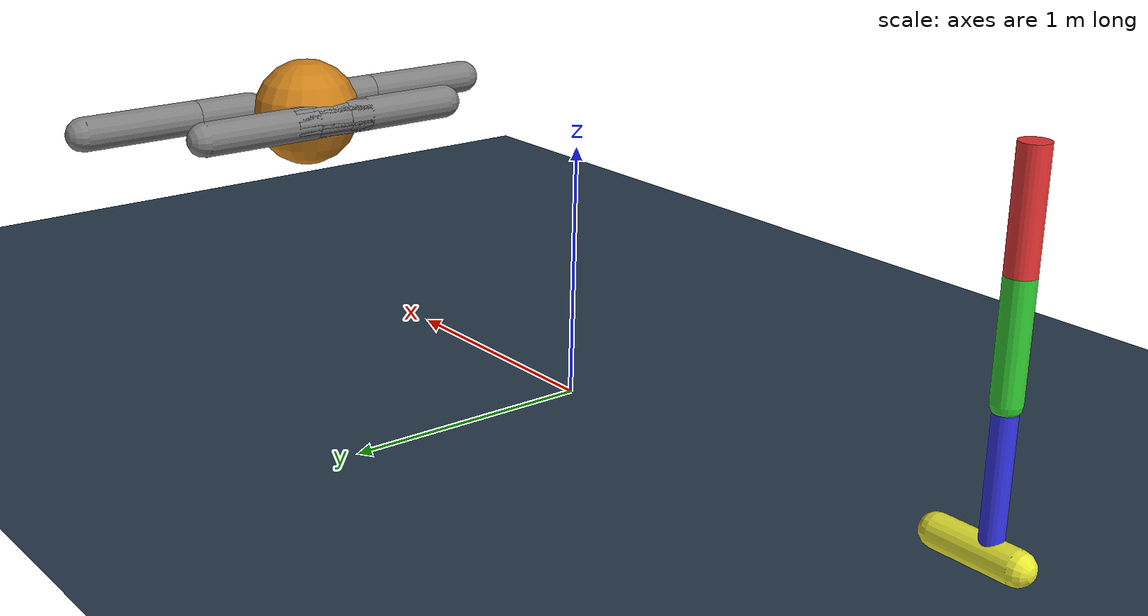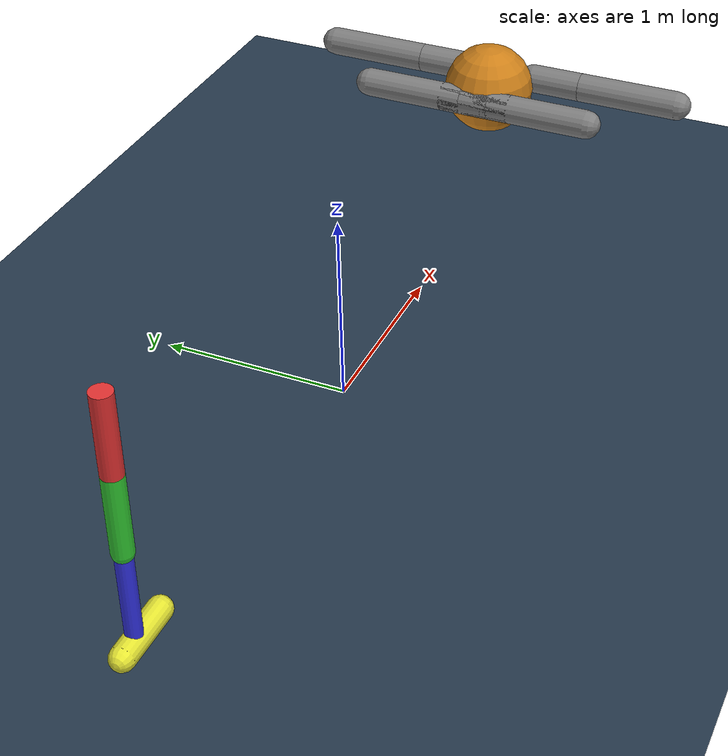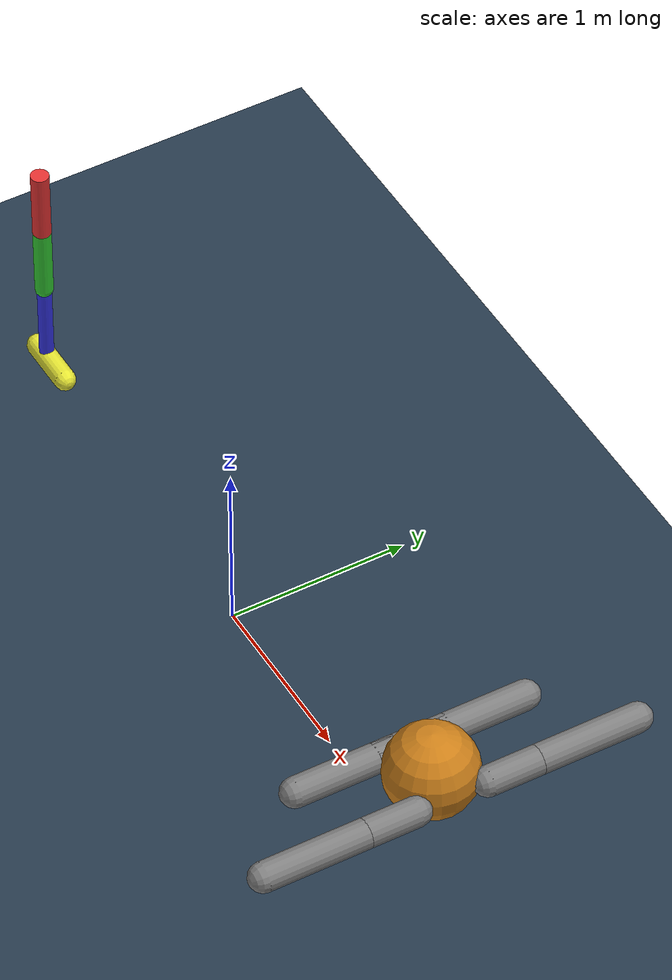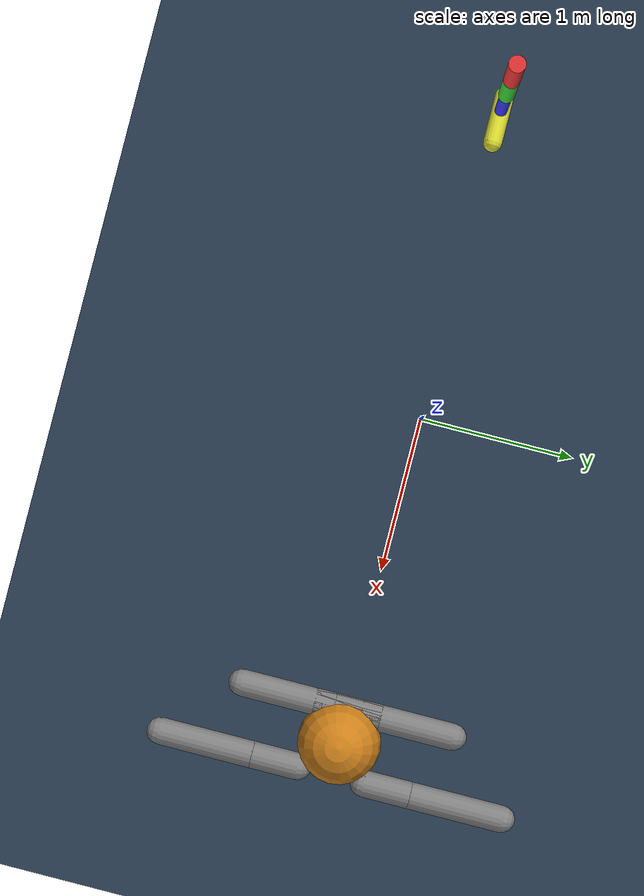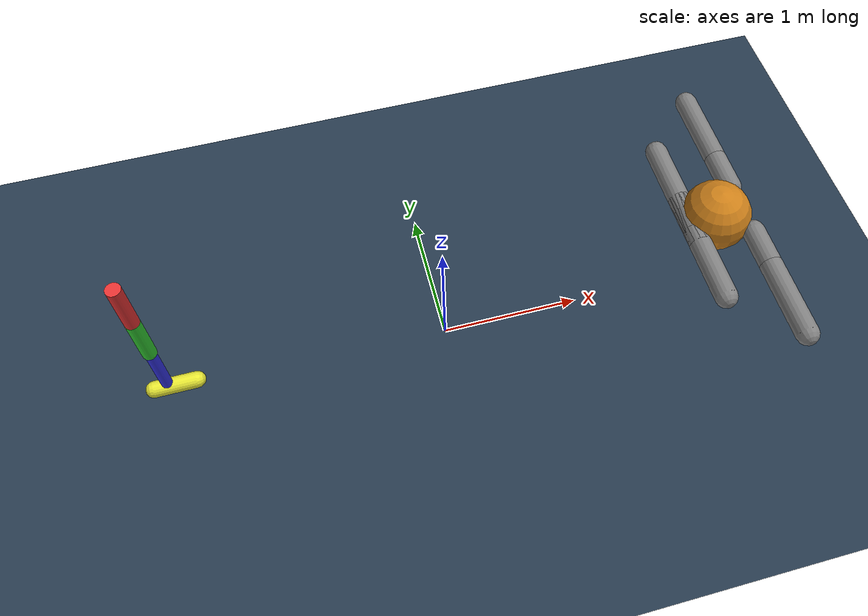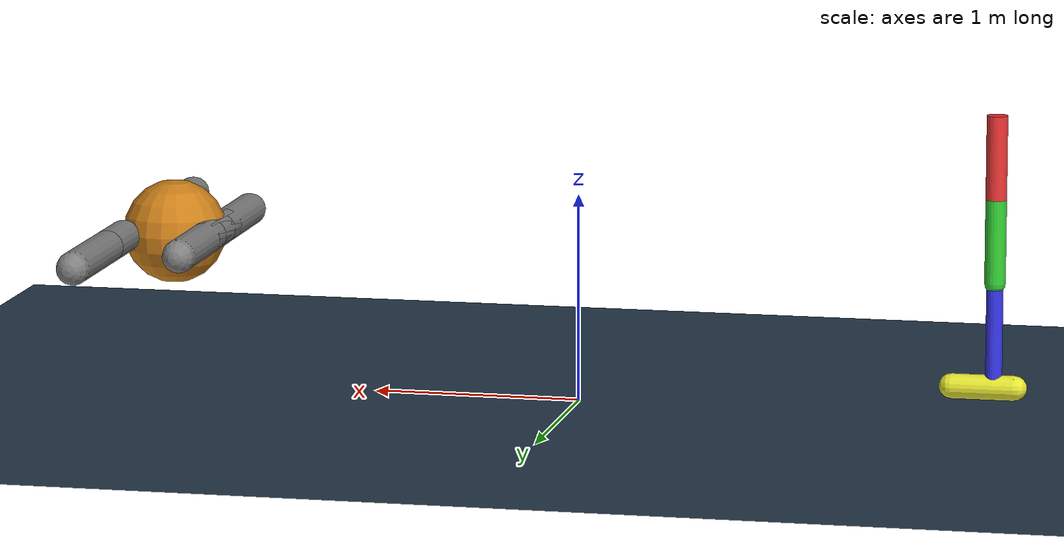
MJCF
<mujoco model="multi_robot_arena">
    <compiler angle="degree" coordinate="local" inertiafromgeom="true" />
    <option timestep="0.002" gravity="0 0 -9.81" integrator="RK4" />

    <default>
        <joint armature="1" damping="1" limited="true"/>
        <geom conaffinity="1" condim="3" density="5.0" friction="1 0.5 0.5" margin="0.01"/>
        <motor ctrllimited="true" ctrlrange="-1.0 1.0"/>
    </default>

    <asset>
        <texture type="skybox" builtin="gradient" rgb1="0.3 0.5 0.7" rgb2="0 0 0" width="512" height="512"/>
        <texture builtin="checker" height="100" name="texplane" rgb1="0.2 0.3 0.4" rgb2="0.1 0.15 0.2" type="2d" width="100"/>
        <material name="MatPlane" reflectance="0.5" shininess="1" specular="1" texrepeat="60 60" texture="texplane"/>
    </asset>

    <worldbody>
        <!-- Ground Plane & Lighting -->
        <light cutoff="100" diffuse="1 1 1" dir="-0 0 -1.3" directional="true" exponent="1" pos="0 0 1.3" specular=".1 .1 .1"/>
        <geom conaffinity="1" condim="3" material="MatPlane" name="floor" pos="0 0 0" size="40 40 40" type="plane"/>

        <!-- ROBOT 1: The Hopper (X=-2, Y=0) -->
        <body name="hopper_torso" pos="-2 0 1.25">
            <joint armature="0" damping="0" limited="false" margin="0.01" name="hopper_root" pos="0 0 0" type="free"/>
            <geom pos="0 0 0" size="0.05 0.2" type="cylinder" rgba="0.9 0.2 0.2 1" />

            <body name="hopper_thigh" pos="0 0 -0.2">
                <joint axis="0 1 0" name="hopper_thigh_joint" pos="0 0 0" range="-150 0" type="hinge"/>
                <geom fromto="0 0 0 0 0 -0.4" size="0.05" type="capsule" rgba="0.2 0.8 0.2 1" />

                <body name="hopper_leg" pos="0 0 -0.4">
                    <joint axis="0 1 0" name="hopper_leg_joint" pos="0 0 0" range="-150 0" type="hinge"/>
                    <geom fromto="0 0 0 0 0 -0.5" size="0.04" type="capsule" rgba="0.2 0.2 0.9 1" />

                    <body name="hopper_foot" pos="0 0 -0.5">
                        <joint axis="0 1 0" name="hopper_foot_joint" pos="0 0 0" range="-45 45" type="hinge"/>
                        <geom fromto="-0.1 0 0 0.2 0 0" size="0.06" type="capsule" rgba="0.9 0.9 0.2 1" />
                    </body>
                </body>
            </body>
        </body>

        <!-- ROBOT 2: The Ant (X=2, Y=0) -->
        <body name="ant_torso" pos="2 0 0.75">
            <joint armature="0" damping="0" limited="false" margin="0.01" name="ant_root" pos="0 0 0" type="free"/>
            <geom name="ant_torso_geom" pos="0 0 0" size="0.25" type="sphere" rgba="0.8 0.5 0.1 1"/>

            <!-- Front Left Leg -->
            <body name="ant_fl_leg" pos="0.2 0.2 0" euler="0 0 45">
                <joint axis="0 0 1" name="ant_fl_hip" range="-30 30" type="hinge"/>
                <geom fromto="0.0 0.0 0.0 0.2 0.2 0.0" size="0.08" type="capsule"/>
                <body pos="0.2 0.2 0">
                    <joint axis="-1 1 0" name="ant_fl_ankle" range="30 70" type="hinge"/>
                    <geom fromto="0.0 0.0 0.0 0.4 0.4 0.0" size="0.08" type="capsule"/>
                </body>
            </body>

            <!-- Front Right Leg -->
            <body name="ant_fr_leg" pos="0.2 -0.2 0" euler="0 0 -45">
                <joint axis="0 0 1" name="ant_fr_hip" range="-30 30" type="hinge"/>
                <geom fromto="0.0 0.0 0.0 0.2 -0.2 0.0" size="0.08" type="capsule"/>
                <body pos="0.2 -0.2 0">
                    <joint axis="1 1 0" name="ant_fr_ankle" range="-70 -30" type="hinge"/>
                    <geom fromto="0.0 0.0 0.0 0.4 -0.4 0.0" size="0.08" type="capsule"/>
                </body>
            </body>

            <!-- Back Left Leg -->
            <body name="ant_bl_leg" pos="-0.2 0.2 0" euler="0 0 135">
                <joint axis="0 0 1" name="ant_bl_hip" range="-30 30" type="hinge"/>
                <geom fromto="0.0 0.0 0.0 -0.2 0.2 0.0" size="0.08" type="capsule"/>
                <body pos="-0.2 0.2 0">
                    <joint axis="-1 -1 0" name="ant_bl_ankle" range="-70 -30" type="hinge"/>
                    <geom fromto="0.0 0.0 0.0 -0.4 0.4 0.0" size="0.08" type="capsule"/>
                </body>
            </body>

            <!-- Back Right Leg -->
            <body name="ant_br_leg" pos="-0.2 -0.2 0" euler="0 0 -135">
                <joint axis="0 0 1" name="ant_br_hip" range="-30 30" type="hinge"/>
                <geom fromto="0.0 0.0 0.0 -0.2 -0.2 0.0" size="0.08" type="capsule"/>
                <body pos="-0.2 -0.2 0">
                    <joint axis="1 -1 0" name="ant_br_ankle" range="30 70" type="hinge"/>
                    <geom fromto="0.0 0.0 0.0 -0.4 -0.4 0.0" size="0.08" type="capsule"/>
                </body>
            </body>
        </body>

    </worldbody>

    <actuator>
        <!-- Hopper Motors -->
        <motor gear="200.0" joint="hopper_thigh_joint" name="hopper_thigh_motor"/>
        <motor gear="200.0" joint="hopper_leg_joint" name="hopper_leg_motor"/>
        <motor gear="100.0" joint="hopper_foot_joint" name="hopper_foot_motor"/>

        <!-- Ant Motors (Hips) -->
        <motor gear="150.0" joint="ant_fl_hip" name="ant_fl_hip_motor"/>
        <motor gear="150.0" joint="ant_fr_hip" name="ant_fr_hip_motor"/>
        <motor gear="150.0" joint="ant_bl_hip" name="ant_bl_hip_motor"/>
        <motor gear="150.0" joint="ant_br_hip" name="ant_br_hip_motor"/>

        <!-- Ant Motors (Ankles) -->
        <motor gear="150.0" joint="ant_fl_ankle" name="ant_fl_ankle_motor"/>
        <motor gear="150.0" joint="ant_fr_ankle" name="ant_fr_ankle_motor"/>
        <motor gear="150.0" joint="ant_bl_ankle" name="ant_bl_ankle_motor"/>
        <motor gear="150.0" joint="ant_br_ankle" name="ant_br_ankle_motor"/>
    </actuator>
</mujoco>
